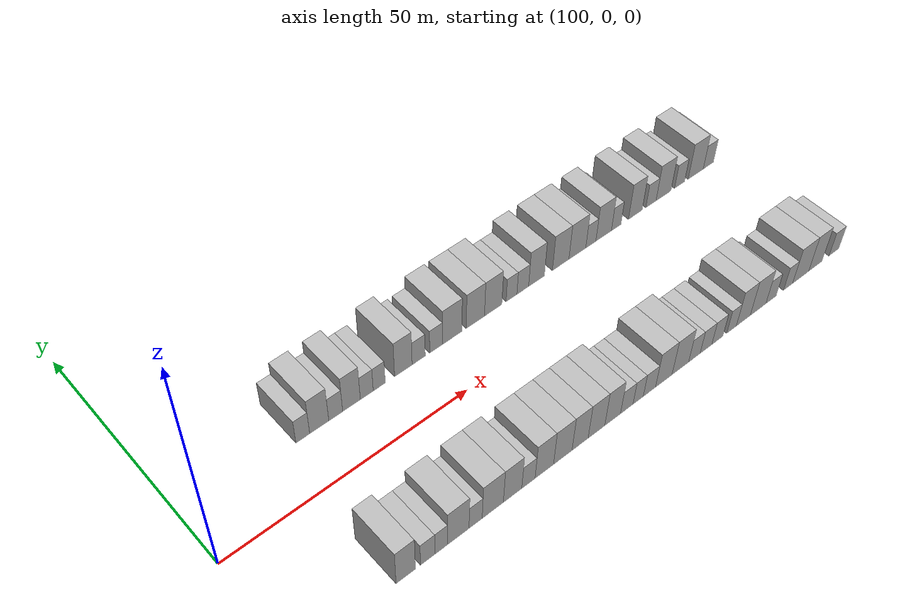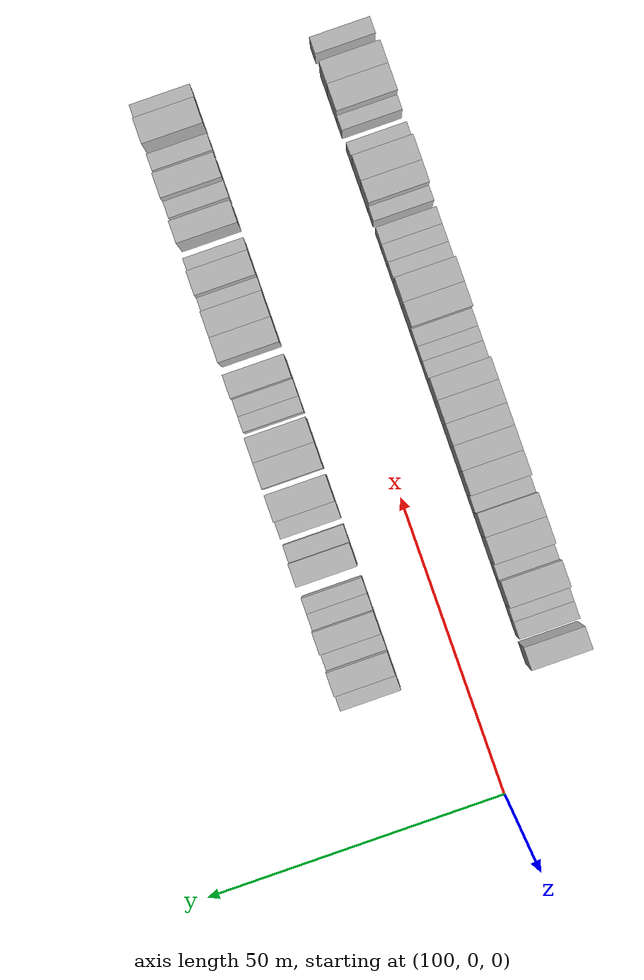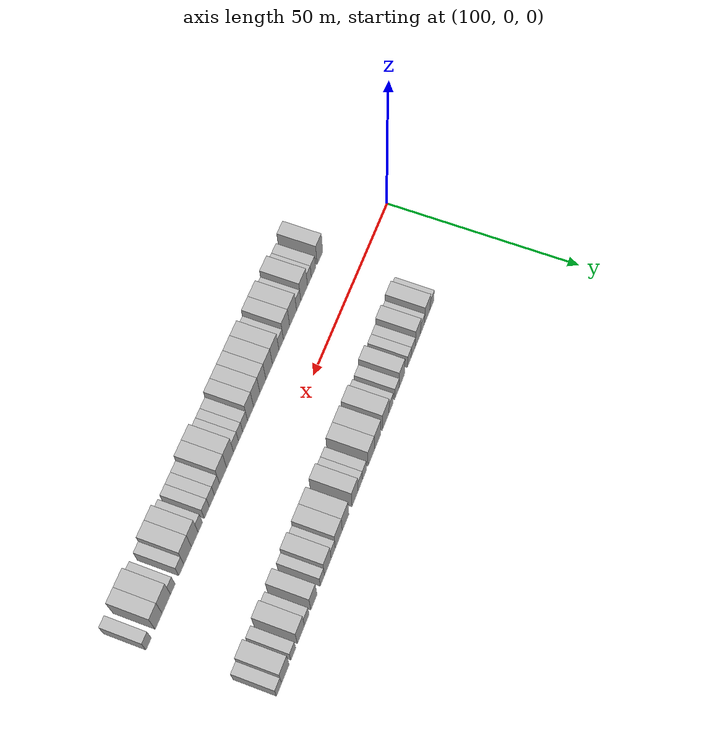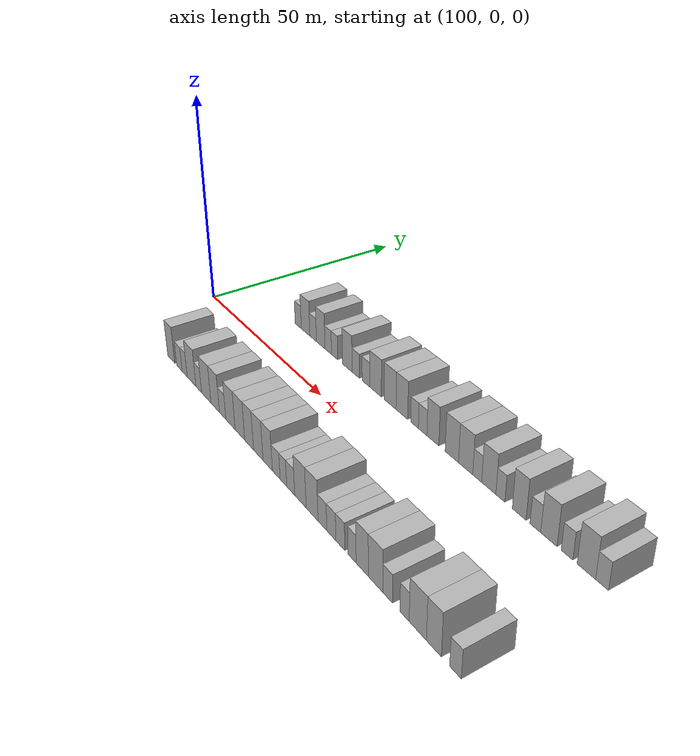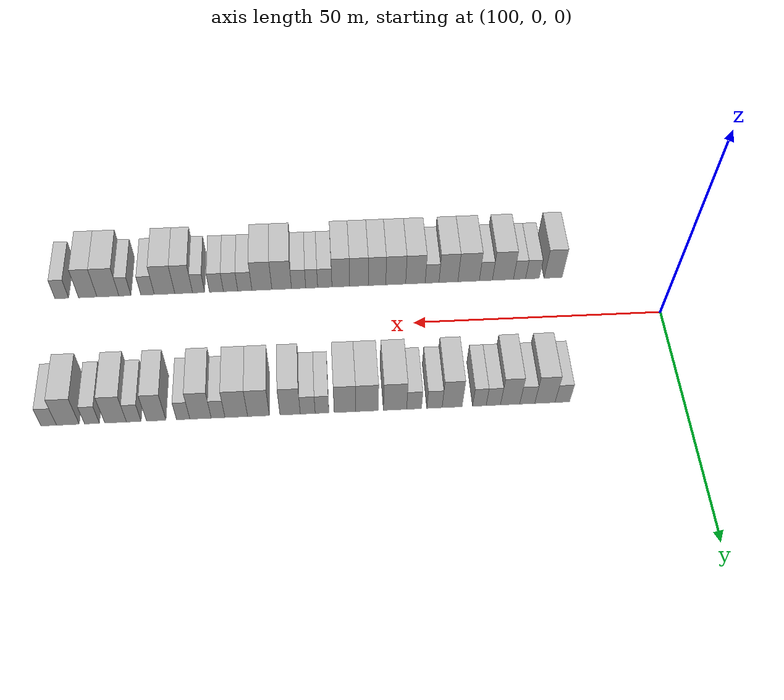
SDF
<sdf version="1.6">
 <world name="default">
  <model name="building_28">
   <static>1</static>
   <pose>123.2405 15.0000 0 0.000000 0.000000 1.570796</pose>
   <link name="link">
    <pose>0 0 3.00 0 0 0</pose>
    <collision name="collision"><geometry><box><size>10.0000 2.7911 6.0000</size></box></geometry></collision>
    <visual name="visual">
     <cast_shadows>0</cast_shadows>
     <geometry><box><size>10.0000 2.7911 6.0000</size></box></geometry>
     <material>
      <script>
       <uri>model://HANNAS_wall/materials/scripts</uri>
       <uri>model://HANNAS_wall/materials/textures</uri>
       <name>vrc/HANNAS_wall</name>
      </script>
     </material>
    </visual>
   </link>
  </model>
  <model name="building_29">
   <static>1</static>
   <pose>126.5817 15.0000 0 0.000000 0.000000 1.570796</pose>
   <link name="link">
    <pose>0 0 4.50 0 0 0</pose>
    <collision name="collision"><geometry><box><size>10.0000 3.8913 9.0000</size></box></geometry></collision>
    <visual name="visual">
     <cast_shadows>0</cast_shadows>
     <geometry><box><size>10.0000 3.8913 9.0000</size></box></geometry>
     <material>
      <script>
       <uri>model://HANNAS_wall/materials/scripts</uri>
       <uri>model://HANNAS_wall/materials/textures</uri>
       <name>vrc/HANNAS_wall</name>
      </script>
     </material>
    </visual>
   </link>
  </model>
  <model name="building_30">
   <static>1</static>
   <pose>129.9661 15.0000 0 0.000000 0.000000 1.570796</pose>
   <link name="link">
    <pose>0 0 3.00 0 0 0</pose>
    <collision name="collision"><geometry><box><size>10.0000 2.8775 6.0000</size></box></geometry></collision>
    <visual name="visual">
     <cast_shadows>0</cast_shadows>
     <geometry><box><size>10.0000 2.8775 6.0000</size></box></geometry>
     <material>
      <script>
       <uri>model://HANNAS_wall/materials/scripts</uri>
       <uri>model://HANNAS_wall/materials/textures</uri>
       <name>vrc/HANNAS_wall</name>
      </script>
     </material>
    </visual>
   </link>
  </model>
  <model name="building_31">
   <static>1</static>
   <pose>133.2513 15.0000 0 0.000000 0.000000 1.570796</pose>
   <link name="link">
    <pose>0 0 4.50 0 0 0</pose>
    <collision name="collision"><geometry><box><size>10.0000 3.6928 9.0000</size></box></geometry></collision>
    <visual name="visual">
     <cast_shadows>0</cast_shadows>
     <geometry><box><size>10.0000 3.6928 9.0000</size></box></geometry>
     <material>
      <script>
       <uri>model://HANNAS_wall/materials/scripts</uri>
       <uri>model://HANNAS_wall/materials/textures</uri>
       <name>vrc/HANNAS_wall</name>
      </script>
     </material>
    </visual>
   </link>
  </model>
  <model name="building_32">
   <static>1</static>
   <pose>136.4618 15.0000 0 0.000000 0.000000 1.570796</pose>
   <link name="link">
    <pose>0 0 3.00 0 0 0</pose>
    <collision name="collision"><geometry><box><size>10.0000 2.7283 6.0000</size></box></geometry></collision>
    <visual name="visual">
     <cast_shadows>0</cast_shadows>
     <geometry><box><size>10.0000 2.7283 6.0000</size></box></geometry>
     <material>
      <script>
       <uri>model://HANNAS_wall/materials/scripts</uri>
       <uri>model://HANNAS_wall/materials/textures</uri>
       <name>vrc/HANNAS_wall</name>
      </script>
     </material>
    </visual>
   </link>
  </model>
  <model name="building_33">
   <static>1</static>
   <pose>139.1239 15.0000 0 0.000000 0.000000 1.570796</pose>
   <link name="link">
    <pose>0 0 3.00 0 0 0</pose>
    <collision name="collision"><geometry><box><size>10.0000 2.5960 6.0000</size></box></geometry></collision>
    <visual name="visual">
     <cast_shadows>0</cast_shadows>
     <geometry><box><size>10.0000 2.5960 6.0000</size></box></geometry>
     <material>
      <script>
       <uri>model://HANNAS_wall/materials/scripts</uri>
       <uri>model://HANNAS_wall/materials/textures</uri>
       <name>vrc/HANNAS_wall</name>
      </script>
     </material>
    </visual>
   </link>
  </model>
  <model name="building_34">
   <static>1</static>
   <pose>144.3345 15.0000 0 0.000000 0.000000 1.570796</pose>
   <link name="link">
    <pose>0 0 4.50 0 0 0</pose>
    <collision name="collision"><geometry><box><size>10.0000 3.8252 9.0000</size></box></geometry></collision>
    <visual name="visual">
     <cast_shadows>0</cast_shadows>
     <geometry><box><size>10.0000 3.8252 9.0000</size></box></geometry>
     <material>
      <script>
       <uri>model://HANNAS_wall/materials/scripts</uri>
       <uri>model://HANNAS_wall/materials/textures</uri>
       <name>vrc/HANNAS_wall</name>
      </script>
     </material>
    </visual>
   </link>
  </model>
  <model name="building_35">
   <static>1</static>
   <pose>147.7011 15.0000 0 0.000000 0.000000 1.570796</pose>
   <link name="link">
    <pose>0 0 3.00 0 0 0</pose>
    <collision name="collision"><geometry><box><size>10.0000 2.9081 6.0000</size></box></geometry></collision>
    <visual name="visual">
     <cast_shadows>0</cast_shadows>
     <geometry><box><size>10.0000 2.9081 6.0000</size></box></geometry>
     <material>
      <script>
       <uri>model://HANNAS_wall/materials/scripts</uri>
       <uri>model://HANNAS_wall/materials/textures</uri>
       <name>vrc/HANNAS_wall</name>
      </script>
     </material>
    </visual>
   </link>
  </model>
  <model name="building_36">
   <static>1</static>
   <pose>151.5841 15.0000 0 0.000000 0.000000 1.570796</pose>
   <link name="link">
    <pose>0 0 3.00 0 0 0</pose>
    <collision name="collision"><geometry><box><size>10.0000 2.8579 6.0000</size></box></geometry></collision>
    <visual name="visual">
     <cast_shadows>0</cast_shadows>
     <geometry><box><size>10.0000 2.8579 6.0000</size></box></geometry>
     <material>
      <script>
       <uri>model://HANNAS_wall/materials/scripts</uri>
       <uri>model://HANNAS_wall/materials/textures</uri>
       <name>vrc/HANNAS_wall</name>
      </script>
     </material>
    </visual>
   </link>
  </model>
  <model name="building_37">
   <static>1</static>
   <pose>155.2118 15.0000 0 0.000000 0.000000 1.570796</pose>
   <link name="link">
    <pose>0 0 4.50 0 0 0</pose>
    <collision name="collision"><geometry><box><size>10.0000 4.3976 9.0000</size></box></geometry></collision>
    <visual name="visual">
     <cast_shadows>0</cast_shadows>
     <geometry><box><size>10.0000 4.3976 9.0000</size></box></geometry>
     <material>
      <script>
       <uri>model://HANNAS_wall/materials/scripts</uri>
       <uri>model://HANNAS_wall/materials/textures</uri>
       <name>vrc/HANNAS_wall</name>
      </script>
     </material>
    </visual>
   </link>
  </model>
  <model name="building_38">
   <static>1</static>
   <pose>160.5394 15.0000 0 0.000000 0.000000 1.570796</pose>
   <link name="link">
    <pose>0 0 4.50 0 0 0</pose>
    <collision name="collision"><geometry><box><size>10.0000 4.2574 9.0000</size></box></geometry></collision>
    <visual name="visual">
     <cast_shadows>0</cast_shadows>
     <geometry><box><size>10.0000 4.2574 9.0000</size></box></geometry>
     <material>
      <script>
       <uri>model://HANNAS_wall/materials/scripts</uri>
       <uri>model://HANNAS_wall/materials/textures</uri>
       <name>vrc/HANNAS_wall</name>
      </script>
     </material>
    </visual>
   </link>
  </model>
  <model name="building_39">
   <static>1</static>
   <pose>164.7098 15.0000 0 0.000000 0.000000 1.570796</pose>
   <link name="link">
    <pose>0 0 4.50 0 0 0</pose>
    <collision name="collision"><geometry><box><size>10.0000 4.0835 9.0000</size></box></geometry></collision>
    <visual name="visual">
     <cast_shadows>0</cast_shadows>
     <geometry><box><size>10.0000 4.0835 9.0000</size></box></geometry>
     <material>
      <script>
       <uri>model://HANNAS_wall/materials/scripts</uri>
       <uri>model://HANNAS_wall/materials/textures</uri>
       <name>vrc/HANNAS_wall</name>
      </script>
     </material>
    </visual>
   </link>
  </model>
  <model name="building_40">
   <static>1</static>
   <pose>169.0527 15.0000 0 0.000000 0.000000 1.570796</pose>
   <link name="link">
    <pose>0 0 3.00 0 0 0</pose>
    <collision name="collision"><geometry><box><size>10.0000 2.6023 6.0000</size></box></geometry></collision>
    <visual name="visual">
     <cast_shadows>0</cast_shadows>
     <geometry><box><size>10.0000 2.6023 6.0000</size></box></geometry>
     <material>
      <script>
       <uri>model://HANNAS_wall/materials/scripts</uri>
       <uri>model://HANNAS_wall/materials/textures</uri>
       <name>vrc/HANNAS_wall</name>
      </script>
     </material>
    </visual>
   </link>
  </model>
  <model name="building_41">
   <static>1</static>
   <pose>171.7632 15.0000 0 0.000000 0.000000 1.570796</pose>
   <link name="link">
    <pose>0 0 3.00 0 0 0</pose>
    <collision name="collision"><geometry><box><size>10.0000 2.8186 6.0000</size></box></geometry></collision>
    <visual name="visual">
     <cast_shadows>0</cast_shadows>
     <geometry><box><size>10.0000 2.8186 6.0000</size></box></geometry>
     <material>
      <script>
       <uri>model://HANNAS_wall/materials/scripts</uri>
       <uri>model://HANNAS_wall/materials/textures</uri>
       <name>vrc/HANNAS_wall</name>
      </script>
     </material>
    </visual>
   </link>
  </model>
  <model name="building_42">
   <static>1</static>
   <pose>175.0899 15.0000 0 0.000000 0.000000 1.570796</pose>
   <link name="link">
    <pose>0 0 4.50 0 0 0</pose>
    <collision name="collision"><geometry><box><size>10.0000 3.8349 9.0000</size></box></geometry></collision>
    <visual name="visual">
     <cast_shadows>0</cast_shadows>
     <geometry><box><size>10.0000 3.8349 9.0000</size></box></geometry>
     <material>
      <script>
       <uri>model://HANNAS_wall/materials/scripts</uri>
       <uri>model://HANNAS_wall/materials/textures</uri>
       <name>vrc/HANNAS_wall</name>
      </script>
     </material>
    </visual>
   </link>
  </model>
  <model name="building_43">
   <static>1</static>
   <pose>181.0642 15.0000 0 0.000000 0.000000 1.570796</pose>
   <link name="link">
    <pose>0 0 4.50 0 0 0</pose>
    <collision name="collision"><geometry><box><size>10.0000 4.1136 9.0000</size></box></geometry></collision>
    <visual name="visual">
     <cast_shadows>0</cast_shadows>
     <geometry><box><size>10.0000 4.1136 9.0000</size></box></geometry>
     <material>
      <script>
       <uri>model://HANNAS_wall/materials/scripts</uri>
       <uri>model://HANNAS_wall/materials/textures</uri>
       <name>vrc/HANNAS_wall</name>
      </script>
     </material>
    </visual>
   </link>
  </model>
  <model name="building_44">
   <static>1</static>
   <pose>185.2542 15.0000 0 0.000000 0.000000 1.570796</pose>
   <link name="link">
    <pose>0 0 4.50 0 0 0</pose>
    <collision name="collision"><geometry><box><size>10.0000 4.2662 9.0000</size></box></geometry></collision>
    <visual name="visual">
     <cast_shadows>0</cast_shadows>
     <geometry><box><size>10.0000 4.2662 9.0000</size></box></geometry>
     <material>
      <script>
       <uri>model://HANNAS_wall/materials/scripts</uri>
       <uri>model://HANNAS_wall/materials/textures</uri>
       <name>vrc/HANNAS_wall</name>
      </script>
     </material>
    </visual>
   </link>
  </model>
  <model name="building_45">
   <static>1</static>
   <pose>188.6804 15.0000 0 0.000000 0.000000 1.570796</pose>
   <link name="link">
    <pose>0 0 3.00 0 0 0</pose>
    <collision name="collision"><geometry><box><size>10.0000 2.5863 6.0000</size></box></geometry></collision>
    <visual name="visual">
     <cast_shadows>0</cast_shadows>
     <geometry><box><size>10.0000 2.5863 6.0000</size></box></geometry>
     <material>
      <script>
       <uri>model://HANNAS_wall/materials/scripts</uri>
       <uri>model://HANNAS_wall/materials/textures</uri>
       <name>vrc/HANNAS_wall</name>
      </script>
     </material>
    </visual>
   </link>
  </model>
  <model name="building_46">
   <static>1</static>
   <pose>191.9830 15.0000 0 0.000000 0.000000 1.570796</pose>
   <link name="link">
    <pose>0 0 4.50 0 0 0</pose>
    <collision name="collision"><geometry><box><size>10.0000 4.0189 9.0000</size></box></geometry></collision>
    <visual name="visual">
     <cast_shadows>0</cast_shadows>
     <geometry><box><size>10.0000 4.0189 9.0000</size></box></geometry>
     <material>
      <script>
       <uri>model://HANNAS_wall/materials/scripts</uri>
       <uri>model://HANNAS_wall/materials/textures</uri>
       <name>vrc/HANNAS_wall</name>
      </script>
     </material>
    </visual>
   </link>
  </model>
  <model name="building_47">
   <static>1</static>
   <pose>195.2415 15.0000 0 0.000000 0.000000 1.570796</pose>
   <link name="link">
    <pose>0 0 3.00 0 0 0</pose>
    <collision name="collision"><geometry><box><size>10.0000 2.4981 6.0000</size></box></geometry></collision>
    <visual name="visual">
     <cast_shadows>0</cast_shadows>
     <geometry><box><size>10.0000 2.4981 6.0000</size></box></geometry>
     <material>
      <script>
       <uri>model://HANNAS_wall/materials/scripts</uri>
       <uri>model://HANNAS_wall/materials/textures</uri>
       <name>vrc/HANNAS_wall</name>
      </script>
     </material>
    </visual>
   </link>
  </model>
  <model name="building_48">
   <static>1</static>
   <pose>200.3131 15.0000 0 0.000000 0.000000 1.570796</pose>
   <link name="link">
    <pose>0 0 4.50 0 0 0</pose>
    <collision name="collision"><geometry><box><size>10.0000 3.6450 9.0000</size></box></geometry></collision>
    <visual name="visual">
     <cast_shadows>0</cast_shadows>
     <geometry><box><size>10.0000 3.6450 9.0000</size></box></geometry>
     <material>
      <script>
       <uri>model://HANNAS_wall/materials/scripts</uri>
       <uri>model://HANNAS_wall/materials/textures</uri>
       <name>vrc/HANNAS_wall</name>
      </script>
     </material>
    </visual>
   </link>
  </model>
  <model name="building_49">
   <static>1</static>
   <pose>204.5103 15.0000 0 0.000000 0.000000 1.570796</pose>
   <link name="link">
    <pose>0 0 3.00 0 0 0</pose>
    <collision name="collision"><geometry><box><size>10.0000 2.7494 6.0000</size></box></geometry></collision>
    <visual name="visual">
     <cast_shadows>0</cast_shadows>
     <geometry><box><size>10.0000 2.7494 6.0000</size></box></geometry>
     <material>
      <script>
       <uri>model://HANNAS_wall/materials/scripts</uri>
       <uri>model://HANNAS_wall/materials/textures</uri>
       <name>vrc/HANNAS_wall</name>
      </script>
     </material>
    </visual>
   </link>
  </model>
  <model name="building_50">
   <static>1</static>
   <pose>207.9162 15.0000 0 0.000000 0.000000 1.570796</pose>
   <link name="link">
    <pose>0 0 4.50 0 0 0</pose>
    <collision name="collision"><geometry><box><size>10.0000 4.0623 9.0000</size></box></geometry></collision>
    <visual name="visual">
     <cast_shadows>0</cast_shadows>
     <geometry><box><size>10.0000 4.0623 9.0000</size></box></geometry>
     <material>
      <script>
       <uri>model://HANNAS_wall/materials/scripts</uri>
       <uri>model://HANNAS_wall/materials/textures</uri>
       <name>vrc/HANNAS_wall</name>
      </script>
     </material>
    </visual>
   </link>
  </model>
  <model name="building_51">
   <static>1</static>
   <pose>212.3395 15.0000 0 0.000000 0.000000 1.570796</pose>
   <link name="link">
    <pose>0 0 3.00 0 0 0</pose>
    <collision name="collision"><geometry><box><size>10.0000 2.7843 6.0000</size></box></geometry></collision>
    <visual name="visual">
     <cast_shadows>0</cast_shadows>
     <geometry><box><size>10.0000 2.7843 6.0000</size></box></geometry>
     <material>
      <script>
       <uri>model://HANNAS_wall/materials/scripts</uri>
       <uri>model://HANNAS_wall/materials/textures</uri>
       <name>vrc/HANNAS_wall</name>
      </script>
     </material>
    </visual>
   </link>
  </model>
  <model name="building_52">
   <static>1</static>
   <pose>216.8495 15.0000 0 0.000000 0.000000 1.570796</pose>
   <link name="link">
    <pose>0 0 4.50 0 0 0</pose>
    <collision name="collision"><geometry><box><size>10.0000 4.2358 9.0000</size></box></geometry></collision>
    <visual name="visual">
     <cast_shadows>0</cast_shadows>
     <geometry><box><size>10.0000 4.2358 9.0000</size></box></geometry>
     <material>
      <script>
       <uri>model://HANNAS_wall/materials/scripts</uri>
       <uri>model://HANNAS_wall/materials/textures</uri>
       <name>vrc/HANNAS_wall</name>
      </script>
     </material>
    </visual>
   </link>
  </model>
  <model name="building_53">
   <static>1</static>
   <pose>220.4136 15.0000 0 0.000000 0.000000 1.570796</pose>
   <link name="link">
    <pose>0 0 3.00 0 0 0</pose>
    <collision name="collision"><geometry><box><size>10.0000 2.8923 6.0000</size></box></geometry></collision>
    <visual name="visual">
     <cast_shadows>0</cast_shadows>
     <geometry><box><size>10.0000 2.8923 6.0000</size></box></geometry>
     <material>
      <script>
       <uri>model://HANNAS_wall/materials/scripts</uri>
       <uri>model://HANNAS_wall/materials/textures</uri>
       <name>vrc/HANNAS_wall</name>
      </script>
     </material>
    </visual>
   </link>
  </model>
  <model name="building_82">
   <static>1</static>
   <pose>120.3275 -15.0000 0 0.000000 0.000000 1.570796</pose>
   <link name="link">
    <pose>0 0 4.50 0 0 0</pose>
    <collision name="collision"><geometry><box><size>10.0000 3.7538 9.0000</size></box></geometry></collision>
    <visual name="visual">
     <cast_shadows>0</cast_shadows>
     <geometry><box><size>10.0000 3.7538 9.0000</size></box></geometry>
     <material>
      <script>
       <uri>model://HANNAS_wall/materials/scripts</uri>
       <uri>model://HANNAS_wall/materials/textures</uri>
       <name>vrc/HANNAS_wall</name>
      </script>
     </material>
    </visual>
   </link>
  </model>
  <model name="building_83">
   <static>1</static>
   <pose>124.6297 -15.0000 0 0.000000 0.000000 1.570796</pose>
   <link name="link">
    <pose>0 0 3.00 0 0 0</pose>
    <collision name="collision"><geometry><box><size>10.0000 2.8504 6.0000</size></box></geometry></collision>
    <visual name="visual">
     <cast_shadows>0</cast_shadows>
     <geometry><box><size>10.0000 2.8504 6.0000</size></box></geometry>
     <material>
      <script>
       <uri>model://HANNAS_wall/materials/scripts</uri>
       <uri>model://HANNAS_wall/materials/textures</uri>
       <name>vrc/HANNAS_wall</name>
      </script>
     </material>
    </visual>
   </link>
  </model>
  <model name="building_84">
   <static>1</static>
   <pose>127.3165 -15.0000 0 0.000000 0.000000 1.570796</pose>
   <link name="link">
    <pose>0 0 3.00 0 0 0</pose>
    <collision name="collision"><geometry><box><size>10.0000 2.5233 6.0000</size></box></geometry></collision>
    <visual name="visual">
     <cast_shadows>0</cast_shadows>
     <geometry><box><size>10.0000 2.5233 6.0000</size></box></geometry>
     <material>
      <script>
       <uri>model://HANNAS_wall/materials/scripts</uri>
       <uri>model://HANNAS_wall/materials/textures</uri>
       <name>vrc/HANNAS_wall</name>
      </script>
     </material>
    </visual>
   </link>
  </model>
  <model name="building_85">
   <static>1</static>
   <pose>130.7624 -15.0000 0 0.000000 0.000000 1.570796</pose>
   <link name="link">
    <pose>0 0 4.50 0 0 0</pose>
    <collision name="collision"><geometry><box><size>10.0000 4.3685 9.0000</size></box></geometry></collision>
    <visual name="visual">
     <cast_shadows>0</cast_shadows>
     <geometry><box><size>10.0000 4.3685 9.0000</size></box></geometry>
     <material>
      <script>
       <uri>model://HANNAS_wall/materials/scripts</uri>
       <uri>model://HANNAS_wall/materials/textures</uri>
       <name>vrc/HANNAS_wall</name>
      </script>
     </material>
    </visual>
   </link>
  </model>
  <model name="building_86">
   <static>1</static>
   <pose>134.3047 -15.0000 0 0.000000 0.000000 1.570796</pose>
   <link name="link">
    <pose>0 0 3.00 0 0 0</pose>
    <collision name="collision"><geometry><box><size>10.0000 2.7161 6.0000</size></box></geometry></collision>
    <visual name="visual">
     <cast_shadows>0</cast_shadows>
     <geometry><box><size>10.0000 2.7161 6.0000</size></box></geometry>
     <material>
      <script>
       <uri>model://HANNAS_wall/materials/scripts</uri>
       <uri>model://HANNAS_wall/materials/textures</uri>
       <name>vrc/HANNAS_wall</name>
      </script>
     </material>
    </visual>
   </link>
  </model>
  <model name="building_87">
   <static>1</static>
   <pose>137.8798 -15.0000 0 0.000000 0.000000 1.570796</pose>
   <link name="link">
    <pose>0 0 4.50 0 0 0</pose>
    <collision name="collision"><geometry><box><size>10.0000 4.4342 9.0000</size></box></geometry></collision>
    <visual name="visual">
     <cast_shadows>0</cast_shadows>
     <geometry><box><size>10.0000 4.4342 9.0000</size></box></geometry>
     <material>
      <script>
       <uri>model://HANNAS_wall/materials/scripts</uri>
       <uri>model://HANNAS_wall/materials/textures</uri>
       <name>vrc/HANNAS_wall</name>
      </script>
     </material>
    </visual>
   </link>
  </model>
  <model name="building_88">
   <static>1</static>
   <pose>142.0542 -15.0000 0 0.000000 0.000000 1.570796</pose>
   <link name="link">
    <pose>0 0 4.50 0 0 0</pose>
    <collision name="collision"><geometry><box><size>10.0000 3.9146 9.0000</size></box></geometry></collision>
    <visual name="visual">
     <cast_shadows>0</cast_shadows>
     <geometry><box><size>10.0000 3.9146 9.0000</size></box></geometry>
     <material>
      <script>
       <uri>model://HANNAS_wall/materials/scripts</uri>
       <uri>model://HANNAS_wall/materials/textures</uri>
       <name>vrc/HANNAS_wall</name>
      </script>
     </material>
    </visual>
   </link>
  </model>
  <model name="building_89">
   <static>1</static>
   <pose>145.4409 -15.0000 0 0.000000 0.000000 1.570796</pose>
   <link name="link">
    <pose>0 0 3.00 0 0 0</pose>
    <collision name="collision"><geometry><box><size>10.0000 2.8587 6.0000</size></box></geometry></collision>
    <visual name="visual">
     <cast_shadows>0</cast_shadows>
     <geometry><box><size>10.0000 2.8587 6.0000</size></box></geometry>
     <material>
      <script>
       <uri>model://HANNAS_wall/materials/scripts</uri>
       <uri>model://HANNAS_wall/materials/textures</uri>
       <name>vrc/HANNAS_wall</name>
      </script>
     </material>
    </visual>
   </link>
  </model>
  <model name="building_90">
   <static>1</static>
   <pose>148.8855 -15.0000 0 0.000000 0.000000 1.570796</pose>
   <link name="link">
    <pose>0 0 4.50 0 0 0</pose>
    <collision name="collision"><geometry><box><size>10.0000 4.0306 9.0000</size></box></geometry></collision>
    <visual name="visual">
     <cast_shadows>0</cast_shadows>
     <geometry><box><size>10.0000 4.0306 9.0000</size></box></geometry>
     <material>
      <script>
       <uri>model://HANNAS_wall/materials/scripts</uri>
       <uri>model://HANNAS_wall/materials/textures</uri>
       <name>vrc/HANNAS_wall</name>
      </script>
     </material>
    </visual>
   </link>
  </model>
  <model name="building_91">
   <static>1</static>
   <pose>152.9528 -15.0000 0 0.000000 0.000000 1.570796</pose>
   <link name="link">
    <pose>0 0 4.50 0 0 0</pose>
    <collision name="collision"><geometry><box><size>10.0000 4.1041 9.0000</size></box></geometry></collision>
    <visual name="visual">
     <cast_shadows>0</cast_shadows>
     <geometry><box><size>10.0000 4.1041 9.0000</size></box></geometry>
     <material>
      <script>
       <uri>model://HANNAS_wall/materials/scripts</uri>
       <uri>model://HANNAS_wall/materials/textures</uri>
       <name>vrc/HANNAS_wall</name>
      </script>
     </material>
    </visual>
   </link>
  </model>
  <model name="building_92">
   <static>1</static>
   <pose>156.8177 -15.0000 0 0.000000 0.000000 1.570796</pose>
   <link name="link">
    <pose>0 0 4.50 0 0 0</pose>
    <collision name="collision"><geometry><box><size>10.0000 3.6257 9.0000</size></box></geometry></collision>
    <visual name="visual">
     <cast_shadows>0</cast_shadows>
     <geometry><box><size>10.0000 3.6257 9.0000</size></box></geometry>
     <material>
      <script>
       <uri>model://HANNAS_wall/materials/scripts</uri>
       <uri>model://HANNAS_wall/materials/textures</uri>
       <name>vrc/HANNAS_wall</name>
      </script>
     </material>
    </visual>
   </link>
  </model>
  <model name="building_93">
   <static>1</static>
   <pose>160.5381 -15.0000 0 0.000000 0.000000 1.570796</pose>
   <link name="link">
    <pose>0 0 4.50 0 0 0</pose>
    <collision name="collision"><geometry><box><size>10.0000 3.8152 9.0000</size></box></geometry></collision>
    <visual name="visual">
     <cast_shadows>0</cast_shadows>
     <geometry><box><size>10.0000 3.8152 9.0000</size></box></geometry>
     <material>
      <script>
       <uri>model://HANNAS_wall/materials/scripts</uri>
       <uri>model://HANNAS_wall/materials/textures</uri>
       <name>vrc/HANNAS_wall</name>
      </script>
     </material>
    </visual>
   </link>
  </model>
  <model name="building_94">
   <static>1</static>
   <pose>164.2671 -15.0000 0 0.000000 0.000000 1.570796</pose>
   <link name="link">
    <pose>0 0 4.50 0 0 0</pose>
    <collision name="collision"><geometry><box><size>10.0000 3.6428 9.0000</size></box></geometry></collision>
    <visual name="visual">
     <cast_shadows>0</cast_shadows>
     <geometry><box><size>10.0000 3.6428 9.0000</size></box></geometry>
     <material>
      <script>
       <uri>model://HANNAS_wall/materials/scripts</uri>
       <uri>model://HANNAS_wall/materials/textures</uri>
       <name>vrc/HANNAS_wall</name>
      </script>
     </material>
    </visual>
   </link>
  </model>
  <model name="building_95">
   <static>1</static>
   <pose>167.5552 -15.0000 0 0.000000 0.000000 1.570796</pose>
   <link name="link">
    <pose>0 0 3.00 0 0 0</pose>
    <collision name="collision"><geometry><box><size>10.0000 2.9334 6.0000</size></box></geometry></collision>
    <visual name="visual">
     <cast_shadows>0</cast_shadows>
     <geometry><box><size>10.0000 2.9334 6.0000</size></box></geometry>
     <material>
      <script>
       <uri>model://HANNAS_wall/materials/scripts</uri>
       <uri>model://HANNAS_wall/materials/textures</uri>
       <name>vrc/HANNAS_wall</name>
      </script>
     </material>
    </visual>
   </link>
  </model>
  <model name="building_96">
   <static>1</static>
   <pose>170.2436 -15.0000 0 0.000000 0.000000 1.570796</pose>
   <link name="link">
    <pose>0 0 3.00 0 0 0</pose>
    <collision name="collision"><geometry><box><size>10.0000 2.4434 6.0000</size></box></geometry></collision>
    <visual name="visual">
     <cast_shadows>0</cast_shadows>
     <geometry><box><size>10.0000 2.4434 6.0000</size></box></geometry>
     <material>
      <script>
       <uri>model://HANNAS_wall/materials/scripts</uri>
       <uri>model://HANNAS_wall/materials/textures</uri>
       <name>vrc/HANNAS_wall</name>
      </script>
     </material>
    </visual>
   </link>
  </model>
  <model name="building_97">
   <static>1</static>
   <pose>172.9290 -15.0000 0 0.000000 0.000000 1.570796</pose>
   <link name="link">
    <pose>0 0 3.00 0 0 0</pose>
    <collision name="collision"><geometry><box><size>10.0000 2.9273 6.0000</size></box></geometry></collision>
    <visual name="visual">
     <cast_shadows>0</cast_shadows>
     <geometry><box><size>10.0000 2.9273 6.0000</size></box></geometry>
     <material>
      <script>
       <uri>model://HANNAS_wall/materials/scripts</uri>
       <uri>model://HANNAS_wall/materials/textures</uri>
       <name>vrc/HANNAS_wall</name>
      </script>
     </material>
    </visual>
   </link>
  </model>
  <model name="building_98">
   <static>1</static>
   <pose>176.4029 -15.0000 0 0.000000 0.000000 1.570796</pose>
   <link name="link">
    <pose>0 0 4.50 0 0 0</pose>
    <collision name="collision"><geometry><box><size>10.0000 4.0204 9.0000</size></box></geometry></collision>
    <visual name="visual">
     <cast_shadows>0</cast_shadows>
     <geometry><box><size>10.0000 4.0204 9.0000</size></box></geometry>
     <material>
      <script>
       <uri>model://HANNAS_wall/materials/scripts</uri>
       <uri>model://HANNAS_wall/materials/textures</uri>
       <name>vrc/HANNAS_wall</name>
      </script>
     </material>
    </visual>
   </link>
  </model>
  <model name="building_99">
   <static>1</static>
   <pose>180.4525 -15.0000 0 0.000000 0.000000 1.570796</pose>
   <link name="link">
    <pose>0 0 4.50 0 0 0</pose>
    <collision name="collision"><geometry><box><size>10.0000 4.0789 9.0000</size></box></geometry></collision>
    <visual name="visual">
     <cast_shadows>0</cast_shadows>
     <geometry><box><size>10.0000 4.0789 9.0000</size></box></geometry>
     <material>
      <script>
       <uri>model://HANNAS_wall/materials/scripts</uri>
       <uri>model://HANNAS_wall/materials/textures</uri>
       <name>vrc/HANNAS_wall</name>
      </script>
     </material>
    </visual>
   </link>
  </model>
  <model name="building_100">
   <static>1</static>
   <pose>183.9404 -15.0000 0 0.000000 0.000000 1.570796</pose>
   <link name="link">
    <pose>0 0 3.00 0 0 0</pose>
    <collision name="collision"><geometry><box><size>10.0000 2.8969 6.0000</size></box></geometry></collision>
    <visual name="visual">
     <cast_shadows>0</cast_shadows>
     <geometry><box><size>10.0000 2.8969 6.0000</size></box></geometry>
     <material>
      <script>
       <uri>model://HANNAS_wall/materials/scripts</uri>
       <uri>model://HANNAS_wall/materials/textures</uri>
       <name>vrc/HANNAS_wall</name>
      </script>
     </material>
    </visual>
   </link>
  </model>
  <model name="building_101">
   <static>1</static>
   <pose>186.8614 -15.0000 0 0.000000 0.000000 1.570796</pose>
   <link name="link">
    <pose>0 0 3.00 0 0 0</pose>
    <collision name="collision"><geometry><box><size>10.0000 2.9450 6.0000</size></box></geometry></collision>
    <visual name="visual">
     <cast_shadows>0</cast_shadows>
     <geometry><box><size>10.0000 2.9450 6.0000</size></box></geometry>
     <material>
      <script>
       <uri>model://HANNAS_wall/materials/scripts</uri>
       <uri>model://HANNAS_wall/materials/textures</uri>
       <name>vrc/HANNAS_wall</name>
      </script>
     </material>
    </visual>
   </link>
  </model>
  <model name="building_102">
   <static>1</static>
   <pose>189.7482 -15.0000 0 0.000000 0.000000 1.570796</pose>
   <link name="link">
    <pose>0 0 3.00 0 0 0</pose>
    <collision name="collision"><geometry><box><size>10.0000 2.8286 6.0000</size></box></geometry></collision>
    <visual name="visual">
     <cast_shadows>0</cast_shadows>
     <geometry><box><size>10.0000 2.8286 6.0000</size></box></geometry>
     <material>
      <script>
       <uri>model://HANNAS_wall/materials/scripts</uri>
       <uri>model://HANNAS_wall/materials/textures</uri>
       <name>vrc/HANNAS_wall</name>
      </script>
     </material>
    </visual>
   </link>
  </model>
  <model name="building_103">
   <static>1</static>
   <pose>193.3975 -15.0000 0 0.000000 0.000000 1.570796</pose>
   <link name="link">
    <pose>0 0 3.00 0 0 0</pose>
    <collision name="collision"><geometry><box><size>10.0000 2.4700 6.0000</size></box></geometry></collision>
    <visual name="visual">
     <cast_shadows>0</cast_shadows>
     <geometry><box><size>10.0000 2.4700 6.0000</size></box></geometry>
     <material>
      <script>
       <uri>model://HANNAS_wall/materials/scripts</uri>
       <uri>model://HANNAS_wall/materials/textures</uri>
       <name>vrc/HANNAS_wall</name>
      </script>
     </material>
    </visual>
   </link>
  </model>
  <model name="building_104">
   <static>1</static>
   <pose>196.4453 -15.0000 0 0.000000 0.000000 1.570796</pose>
   <link name="link">
    <pose>0 0 4.50 0 0 0</pose>
    <collision name="collision"><geometry><box><size>10.0000 3.6256 9.0000</size></box></geometry></collision>
    <visual name="visual">
     <cast_shadows>0</cast_shadows>
     <geometry><box><size>10.0000 3.6256 9.0000</size></box></geometry>
     <material>
      <script>
       <uri>model://HANNAS_wall/materials/scripts</uri>
       <uri>model://HANNAS_wall/materials/textures</uri>
       <name>vrc/HANNAS_wall</name>
      </script>
     </material>
    </visual>
   </link>
  </model>
  <model name="building_105">
   <static>1</static>
   <pose>200.3413 -15.0000 0 0.000000 0.000000 1.570796</pose>
   <link name="link">
    <pose>0 0 4.50 0 0 0</pose>
    <collision name="collision"><geometry><box><size>10.0000 4.1664 9.0000</size></box></geometry></collision>
    <visual name="visual">
     <cast_shadows>0</cast_shadows>
     <geometry><box><size>10.0000 4.1664 9.0000</size></box></geometry>
     <material>
      <script>
       <uri>model://HANNAS_wall/materials/scripts</uri>
       <uri>model://HANNAS_wall/materials/textures</uri>
       <name>vrc/HANNAS_wall</name>
      </script>
     </material>
    </visual>
   </link>
  </model>
  <model name="building_106">
   <static>1</static>
   <pose>203.7994 -15.0000 0 0.000000 0.000000 1.570796</pose>
   <link name="link">
    <pose>0 0 3.00 0 0 0</pose>
    <collision name="collision"><geometry><box><size>10.0000 2.7497 6.0000</size></box></geometry></collision>
    <visual name="visual">
     <cast_shadows>0</cast_shadows>
     <geometry><box><size>10.0000 2.7497 6.0000</size></box></geometry>
     <material>
      <script>
       <uri>model://HANNAS_wall/materials/scripts</uri>
       <uri>model://HANNAS_wall/materials/textures</uri>
       <name>vrc/HANNAS_wall</name>
      </script>
     </material>
    </visual>
   </link>
  </model>
  <model name="building_107">
   <static>1</static>
   <pose>208.4037 -15.0000 0 0.000000 0.000000 1.570796</pose>
   <link name="link">
    <pose>0 0 3.00 0 0 0</pose>
    <collision name="collision"><geometry><box><size>10.0000 2.4590 6.0000</size></box></geometry></collision>
    <visual name="visual">
     <cast_shadows>0</cast_shadows>
     <geometry><box><size>10.0000 2.4590 6.0000</size></box></geometry>
     <material>
      <script>
       <uri>model://HANNAS_wall/materials/scripts</uri>
       <uri>model://HANNAS_wall/materials/textures</uri>
       <name>vrc/HANNAS_wall</name>
      </script>
     </material>
    </visual>
   </link>
  </model>
  <model name="building_108">
   <static>1</static>
   <pose>211.8627 -15.0000 0 0.000000 0.000000 1.570796</pose>
   <link name="link">
    <pose>0 0 4.50 0 0 0</pose>
    <collision name="collision"><geometry><box><size>10.0000 4.4590 9.0000</size></box></geometry></collision>
    <visual name="visual">
     <cast_shadows>0</cast_shadows>
     <geometry><box><size>10.0000 4.4590 9.0000</size></box></geometry>
     <material>
      <script>
       <uri>model://HANNAS_wall/materials/scripts</uri>
       <uri>model://HANNAS_wall/materials/textures</uri>
       <name>vrc/HANNAS_wall</name>
      </script>
     </material>
    </visual>
   </link>
  </model>
  <model name="building_109">
   <static>1</static>
   <pose>215.9589 -15.0000 0 0.000000 0.000000 1.570796</pose>
   <link name="link">
    <pose>0 0 4.50 0 0 0</pose>
    <collision name="collision"><geometry><box><size>10.0000 3.7336 9.0000</size></box></geometry></collision>
    <visual name="visual">
     <cast_shadows>0</cast_shadows>
     <geometry><box><size>10.0000 3.7336 9.0000</size></box></geometry>
     <material>
      <script>
       <uri>model://HANNAS_wall/materials/scripts</uri>
       <uri>model://HANNAS_wall/materials/textures</uri>
       <name>vrc/HANNAS_wall</name>
      </script>
     </material>
    </visual>
   </link>
  </model>
  <model name="building_110">
   <static>1</static>
   <pose>221.2120 -15.0000 0 0.000000 0.000000 1.570796</pose>
   <link name="link">
    <pose>0 0 3.00 0 0 0</pose>
    <collision name="collision"><geometry><box><size>10.0000 2.7726 6.0000</size></box></geometry></collision>
    <visual name="visual">
     <cast_shadows>0</cast_shadows>
     <geometry><box><size>10.0000 2.7726 6.0000</size></box></geometry>
     <material>
      <script>
       <uri>model://HANNAS_wall/materials/scripts</uri>
       <uri>model://HANNAS_wall/materials/textures</uri>
       <name>vrc/HANNAS_wall</name>
      </script>
     </material>
    </visual>
   </link>
  </model>
 </world>
</sdf>
